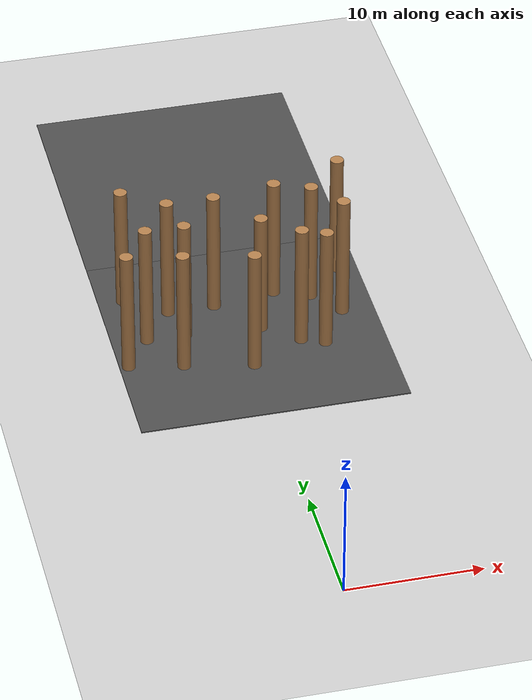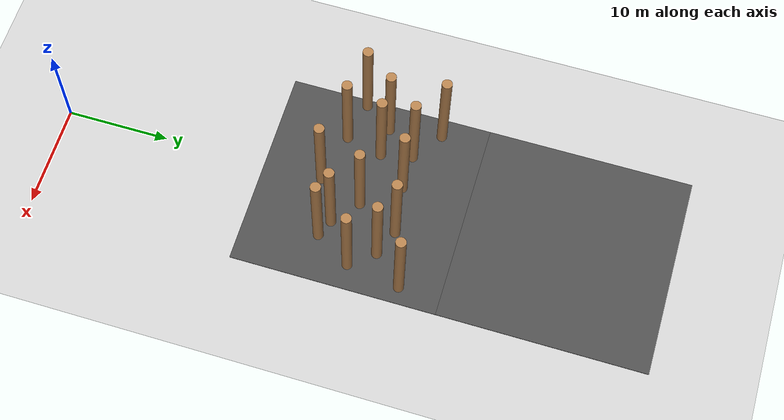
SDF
<sdf version="1.6">
 <world name="default">
  <model name="ground_plane">
   <static>1</static>
   <link name="link">
    <collision name="collision">
     <geometry><plane><normal>0 0 1</normal><size>100 100</size></plane></geometry>
     <surface><friction><ode><mu>100</mu><mu2>50</mu2></ode></friction></surface>
    </collision>
    <visual name="visual">
     <cast_shadows>0</cast_shadows>
     <geometry><plane><normal>0 0 1</normal><size>100 100</size></plane></geometry>
     <material>
      <script><uri>file://media/materials/scripts/gazebo.material</uri><name>Gazebo/Grey</name></script>
     </material>
    </visual>
   </link>
  </model>
  <model name="asphalt_plane_2">
   <static>1</static>
   <link name="link">
    <collision name="collision"><geometry><box><size>20 20 0.1</size></box></geometry></collision>
    <visual name="visual">
     <cast_shadows>0</cast_shadows>
     <geometry><box><size>20 20 0.1</size></box></geometry>
     <material>
      <script>
       <uri>model://asphalt_plane/materials/scripts</uri>
       <uri>model://asphalt_plane/materials/textures</uri>
       <name>vrc/asphalt</name>
      </script>
     </material>
    </visual>
   </link>
   <pose>0.117642 29.9977 0 0 -0 0</pose>
  </model>
  <model name="train">
   <link name="link_0_clone_0_clone_11_clone_15">
    <pose>-5.95615 16.256 0.043478 0 -0 3e-06</pose>
    <inertial>
     <mass>1000</mass>
     <inertia><ixx>0.145833</ixx><ixy>0</ixy><ixz>0</ixz><iyy>0.145833</iyy><iyz>0</iyz><izz>0.125</izz></inertia>
    </inertial>
    <visual name="visual">
     <pose>0 0 4.5 0 -0 0</pose>
     <geometry><cylinder><radius>0.5</radius><length>10</length></cylinder></geometry>
     <material>
      <lighting>1</lighting>
      <script><uri>file://media/materials/scripts/gazebo.material</uri><name>Gazebo/WoodFloor</name></script>
      <ambient>0.3 0.3 0.3 1</ambient>
      <diffuse>0.7 0.7 0.7 1</diffuse>
      <specular>0.01 0.01 0.01 1</specular>
      <emissive>0 0 0 1</emissive>
      <shader type="vertex"><normal_map>__default__</normal_map></shader>
     </material>
    </visual>
    <collision name="collision">
     <pose>0 0 4.5 0 -0 0</pose>
     <geometry><cylinder><radius>0.5</radius><length>10</length></cylinder></geometry>
     <surface>
      <friction>
       <ode><mu>1</mu><mu2>1</mu2><fdir1>0 0 0</fdir1><slip1>0</slip1><slip2>0</slip2></ode>
       <torsional>
        <coefficient>1</coefficient>
        <patch_radius>0</patch_radius>
        <surface_radius>0</surface_radius>
        <use_patch_radius>1</use_patch_radius>
        <ode><slip>0</slip></ode>
       </torsional>
      </friction>
      <bounce><restitution_coefficient>0</restitution_coefficient><threshold>1e+06</threshold></bounce>
      <contact>
       <collide_without_contact>0</collide_without_contact>
       <collide_without_contact_bitmask>1</collide_without_contact_bitmask>
       <collide_bitmask>1</collide_bitmask>
       <ode>
        <soft_cfm>0</soft_cfm>
        <soft_erp>0.2</soft_erp>
        <kp>1e+13</kp>
        <kd>1</kd>
        <max_vel>0.01</max_vel>
        <min_depth>0</min_depth>
       </ode>
       <bullet>
        <split_impulse>1</split_impulse>
        <split_impulse_penetration_threshold>-0.01</split_impulse_penetration_threshold>
        <soft_cfm>0</soft_cfm>
        <soft_erp>0.2</soft_erp>
        <kp>1e+13</kp>
        <kd>1</kd>
       </bullet>
      </contact>
     </surface>
    </collision>
   </link>
   <link name="link_0_clone_0_clone_11_clone_16">
    <pose>-3.07966 16.2248 0.043478 0 -0 3e-06</pose>
    <inertial>
     <mass>1000</mass>
     <inertia><ixx>0.145833</ixx><ixy>0</ixy><ixz>0</ixz><iyy>0.145833</iyy><iyz>0</iyz><izz>0.125</izz></inertia>
    </inertial>
    <visual name="visual">
     <pose>0 0 4.5 0 -0 0</pose>
     <geometry><cylinder><radius>0.5</radius><length>10</length></cylinder></geometry>
     <material>
      <lighting>1</lighting>
      <script><uri>file://media/materials/scripts/gazebo.material</uri><name>Gazebo/WoodFloor</name></script>
      <ambient>0.3 0.3 0.3 1</ambient>
      <diffuse>0.7 0.7 0.7 1</diffuse>
      <specular>0.01 0.01 0.01 1</specular>
      <emissive>0 0 0 1</emissive>
      <shader type="vertex"><normal_map>__default__</normal_map></shader>
     </material>
    </visual>
    <collision name="collision">
     <pose>0 0 4.5 0 -0 0</pose>
     <geometry><cylinder><radius>0.5</radius><length>10</length></cylinder></geometry>
     <surface>
      <friction>
       <ode><mu>1</mu><mu2>1</mu2><fdir1>0 0 0</fdir1><slip1>0</slip1><slip2>0</slip2></ode>
       <torsional>
        <coefficient>1</coefficient>
        <patch_radius>0</patch_radius>
        <surface_radius>0</surface_radius>
        <use_patch_radius>1</use_patch_radius>
        <ode><slip>0</slip></ode>
       </torsional>
      </friction>
      <bounce><restitution_coefficient>0</restitution_coefficient><threshold>1e+06</threshold></bounce>
      <contact>
       <collide_without_contact>0</collide_without_contact>
       <collide_without_contact_bitmask>1</collide_without_contact_bitmask>
       <collide_bitmask>1</collide_bitmask>
       <ode>
        <soft_cfm>0</soft_cfm>
        <soft_erp>0.2</soft_erp>
        <kp>1e+13</kp>
        <kd>1</kd>
        <max_vel>0.01</max_vel>
        <min_depth>0</min_depth>
       </ode>
       <bullet>
        <split_impulse>1</split_impulse>
        <split_impulse_penetration_threshold>-0.01</split_impulse_penetration_threshold>
        <soft_cfm>0</soft_cfm>
        <soft_erp>0.2</soft_erp>
        <kp>1e+13</kp>
        <kd>1</kd>
       </bullet>
      </contact>
     </surface>
    </collision>
   </link>
   <link name="link_0_clone_0_clone_11_clone_17">
    <pose>2.57128 15.8235 0.043478 0 -0 3e-06</pose>
    <inertial>
     <mass>1000</mass>
     <inertia><ixx>0.145833</ixx><ixy>0</ixy><ixz>0</ixz><iyy>0.145833</iyy><iyz>0</iyz><izz>0.125</izz></inertia>
    </inertial>
    <visual name="visual">
     <pose>0 0 4.5 0 -0 0</pose>
     <geometry><cylinder><radius>0.5</radius><length>10</length></cylinder></geometry>
     <material>
      <lighting>1</lighting>
      <script><uri>file://media/materials/scripts/gazebo.material</uri><name>Gazebo/WoodFloor</name></script>
      <ambient>0.3 0.3 0.3 1</ambient>
      <diffuse>0.7 0.7 0.7 1</diffuse>
      <specular>0.01 0.01 0.01 1</specular>
      <emissive>0 0 0 1</emissive>
      <shader type="vertex"><normal_map>__default__</normal_map></shader>
     </material>
    </visual>
    <collision name="collision">
     <pose>0 0 4.5 0 -0 0</pose>
     <geometry><cylinder><radius>0.5</radius><length>10</length></cylinder></geometry>
     <surface>
      <friction>
       <ode><mu>1</mu><mu2>1</mu2><fdir1>0 0 0</fdir1><slip1>0</slip1><slip2>0</slip2></ode>
       <torsional>
        <coefficient>1</coefficient>
        <patch_radius>0</patch_radius>
        <surface_radius>0</surface_radius>
        <use_patch_radius>1</use_patch_radius>
        <ode><slip>0</slip></ode>
       </torsional>
      </friction>
      <bounce><restitution_coefficient>0</restitution_coefficient><threshold>1e+06</threshold></bounce>
      <contact>
       <collide_without_contact>0</collide_without_contact>
       <collide_without_contact_bitmask>1</collide_without_contact_bitmask>
       <collide_bitmask>1</collide_bitmask>
       <ode>
        <soft_cfm>0</soft_cfm>
        <soft_erp>0.2</soft_erp>
        <kp>1e+13</kp>
        <kd>1</kd>
        <max_vel>0.01</max_vel>
        <min_depth>0</min_depth>
       </ode>
       <bullet>
        <split_impulse>1</split_impulse>
        <split_impulse_penetration_threshold>-0.01</split_impulse_penetration_threshold>
        <soft_cfm>0</soft_cfm>
        <soft_erp>0.2</soft_erp>
        <kp>1e+13</kp>
        <kd>1</kd>
       </bullet>
      </contact>
     </surface>
    </collision>
   </link>
   <link name="link_0_clone_0_clone_11_clone_18">
    <pose>-0.221865 19.2173 0.043478 0 -0 3e-06</pose>
    <inertial>
     <mass>1000</mass>
     <inertia><ixx>0.145833</ixx><ixy>0</ixy><ixz>0</ixz><iyy>0.145833</iyy><iyz>0</iyz><izz>0.125</izz></inertia>
    </inertial>
    <visual name="visual">
     <pose>0 0 4.5 0 -0 0</pose>
     <geometry><cylinder><radius>0.5</radius><length>10</length></cylinder></geometry>
     <material>
      <lighting>1</lighting>
      <script><uri>file://media/materials/scripts/gazebo.material</uri><name>Gazebo/WoodFloor</name></script>
      <ambient>0.3 0.3 0.3 1</ambient>
      <diffuse>0.7 0.7 0.7 1</diffuse>
      <specular>0.01 0.01 0.01 1</specular>
      <emissive>0 0 0 1</emissive>
      <shader type="vertex"><normal_map>__default__</normal_map></shader>
     </material>
    </visual>
    <collision name="collision">
     <pose>0 0 4.5 0 -0 0</pose>
     <geometry><cylinder><radius>0.5</radius><length>10</length></cylinder></geometry>
     <surface>
      <friction>
       <ode><mu>1</mu><mu2>1</mu2><fdir1>0 0 0</fdir1><slip1>0</slip1><slip2>0</slip2></ode>
       <torsional>
        <coefficient>1</coefficient>
        <patch_radius>0</patch_radius>
        <surface_radius>0</surface_radius>
        <use_patch_radius>1</use_patch_radius>
        <ode><slip>0</slip></ode>
       </torsional>
      </friction>
      <bounce><restitution_coefficient>0</restitution_coefficient><threshold>1e+06</threshold></bounce>
      <contact>
       <collide_without_contact>0</collide_without_contact>
       <collide_without_contact_bitmask>1</collide_without_contact_bitmask>
       <collide_bitmask>1</collide_bitmask>
       <ode>
        <soft_cfm>0</soft_cfm>
        <soft_erp>0.2</soft_erp>
        <kp>1e+13</kp>
        <kd>1</kd>
        <max_vel>0.01</max_vel>
        <min_depth>0</min_depth>
       </ode>
       <bullet>
        <split_impulse>1</split_impulse>
        <split_impulse_penetration_threshold>-0.01</split_impulse_penetration_threshold>
        <soft_cfm>0</soft_cfm>
        <soft_erp>0.2</soft_erp>
        <kp>1e+13</kp>
        <kd>1</kd>
       </bullet>
      </contact>
     </surface>
    </collision>
   </link>
   <link name="link_0_clone_0_clone_11_clone_19">
    <pose>7.08596 18.8441 0.043478 0 -0 3e-06</pose>
    <inertial>
     <mass>1000</mass>
     <inertia><ixx>0.145833</ixx><ixy>0</ixy><ixz>0</ixz><iyy>0.145833</iyy><iyz>0</iyz><izz>0.125</izz></inertia>
    </inertial>
    <visual name="visual">
     <pose>0 0 4.5 0 -0 0</pose>
     <geometry><cylinder><radius>0.5</radius><length>10</length></cylinder></geometry>
     <material>
      <lighting>1</lighting>
      <script><uri>file://media/materials/scripts/gazebo.material</uri><name>Gazebo/WoodFloor</name></script>
      <ambient>0.3 0.3 0.3 1</ambient>
      <diffuse>0.7 0.7 0.7 1</diffuse>
      <specular>0.01 0.01 0.01 1</specular>
      <emissive>0 0 0 1</emissive>
      <shader type="vertex"><normal_map>__default__</normal_map></shader>
     </material>
    </visual>
    <collision name="collision">
     <pose>0 0 4.5 0 -0 0</pose>
     <geometry><cylinder><radius>0.5</radius><length>10</length></cylinder></geometry>
     <surface>
      <friction>
       <ode><mu>1</mu><mu2>1</mu2><fdir1>0 0 0</fdir1><slip1>0</slip1><slip2>0</slip2></ode>
       <torsional>
        <coefficient>1</coefficient>
        <patch_radius>0</patch_radius>
        <surface_radius>0</surface_radius>
        <use_patch_radius>1</use_patch_radius>
        <ode><slip>0</slip></ode>
       </torsional>
      </friction>
      <bounce><restitution_coefficient>0</restitution_coefficient><threshold>1e+06</threshold></bounce>
      <contact>
       <collide_without_contact>0</collide_without_contact>
       <collide_without_contact_bitmask>1</collide_without_contact_bitmask>
       <collide_bitmask>1</collide_bitmask>
       <ode>
        <soft_cfm>0</soft_cfm>
        <soft_erp>0.2</soft_erp>
        <kp>1e+13</kp>
        <kd>1</kd>
        <max_vel>0.01</max_vel>
        <min_depth>0</min_depth>
       </ode>
       <bullet>
        <split_impulse>1</split_impulse>
        <split_impulse_penetration_threshold>-0.01</split_impulse_penetration_threshold>
        <soft_cfm>0</soft_cfm>
        <soft_erp>0.2</soft_erp>
        <kp>1e+13</kp>
        <kd>1</kd>
       </bullet>
      </contact>
     </surface>
    </collision>
   </link>
   <link name="link_0_clone_0_clone_11_clone_20">
    <pose>9.77782 21.7532 0.043478 0 -0 3e-06</pose>
    <inertial>
     <mass>1000</mass>
     <inertia><ixx>0.145833</ixx><ixy>0</ixy><ixz>0</ixz><iyy>0.145833</iyy><iyz>0</iyz><izz>0.125</izz></inertia>
    </inertial>
    <visual name="visual">
     <pose>0 0 4.5 0 -0 0</pose>
     <geometry><cylinder><radius>0.5</radius><length>10</length></cylinder></geometry>
     <material>
      <lighting>1</lighting>
      <script><uri>file://media/materials/scripts/gazebo.material</uri><name>Gazebo/WoodFloor</name></script>
      <ambient>0.3 0.3 0.3 1</ambient>
      <diffuse>0.7 0.7 0.7 1</diffuse>
      <specular>0.01 0.01 0.01 1</specular>
      <emissive>0 0 0 1</emissive>
      <shader type="vertex"><normal_map>__default__</normal_map></shader>
     </material>
    </visual>
    <collision name="collision">
     <pose>0 0 4.5 0 -0 0</pose>
     <geometry><cylinder><radius>0.5</radius><length>10</length></cylinder></geometry>
     <surface>
      <friction>
       <ode><mu>1</mu><mu2>1</mu2><fdir1>0 0 0</fdir1><slip1>0</slip1><slip2>0</slip2></ode>
       <torsional>
        <coefficient>1</coefficient>
        <patch_radius>0</patch_radius>
        <surface_radius>0</surface_radius>
        <use_patch_radius>1</use_patch_radius>
        <ode><slip>0</slip></ode>
       </torsional>
      </friction>
      <bounce><restitution_coefficient>0</restitution_coefficient><threshold>1e+06</threshold></bounce>
      <contact>
       <collide_without_contact>0</collide_without_contact>
       <collide_without_contact_bitmask>1</collide_without_contact_bitmask>
       <collide_bitmask>1</collide_bitmask>
       <ode>
        <soft_cfm>0</soft_cfm>
        <soft_erp>0.2</soft_erp>
        <kp>1e+13</kp>
        <kd>1</kd>
        <max_vel>0.01</max_vel>
        <min_depth>0</min_depth>
       </ode>
       <bullet>
        <split_impulse>1</split_impulse>
        <split_impulse_penetration_threshold>-0.01</split_impulse_penetration_threshold>
        <soft_cfm>0</soft_cfm>
        <soft_erp>0.2</soft_erp>
        <kp>1e+13</kp>
        <kd>1</kd>
       </bullet>
      </contact>
     </surface>
    </collision>
   </link>
   <link name="link_0_clone_0_clone_11_clone_21">
    <pose>4.49421 19.8797 0.043478 0 -0 3e-06</pose>
    <inertial>
     <mass>1000</mass>
     <inertia><ixx>0.145833</ixx><ixy>0</ixy><ixz>0</ixz><iyy>0.145833</iyy><iyz>0</iyz><izz>0.125</izz></inertia>
    </inertial>
    <visual name="visual">
     <pose>0 0 4.5 0 -0 0</pose>
     <geometry><cylinder><radius>0.5</radius><length>10</length></cylinder></geometry>
     <material>
      <lighting>1</lighting>
      <script><uri>file://media/materials/scripts/gazebo.material</uri><name>Gazebo/WoodFloor</name></script>
      <ambient>0.3 0.3 0.3 1</ambient>
      <diffuse>0.7 0.7 0.7 1</diffuse>
      <specular>0.01 0.01 0.01 1</specular>
      <emissive>0 0 0 1</emissive>
      <shader type="vertex"><normal_map>__default__</normal_map></shader>
     </material>
    </visual>
    <collision name="collision">
     <pose>0 0 4.5 0 -0 0</pose>
     <geometry><cylinder><radius>0.5</radius><length>10</length></cylinder></geometry>
     <surface>
      <friction>
       <ode><mu>1</mu><mu2>1</mu2><fdir1>0 0 0</fdir1><slip1>0</slip1><slip2>0</slip2></ode>
       <torsional>
        <coefficient>1</coefficient>
        <patch_radius>0</patch_radius>
        <surface_radius>0</surface_radius>
        <use_patch_radius>1</use_patch_radius>
        <ode><slip>0</slip></ode>
       </torsional>
      </friction>
      <bounce><restitution_coefficient>0</restitution_coefficient><threshold>1e+06</threshold></bounce>
      <contact>
       <collide_without_contact>0</collide_without_contact>
       <collide_without_contact_bitmask>1</collide_without_contact_bitmask>
       <collide_bitmask>1</collide_bitmask>
       <ode>
        <soft_cfm>0</soft_cfm>
        <soft_erp>0.2</soft_erp>
        <kp>1e+13</kp>
        <kd>1</kd>
        <max_vel>0.01</max_vel>
        <min_depth>0</min_depth>
       </ode>
       <bullet>
        <split_impulse>1</split_impulse>
        <split_impulse_penetration_threshold>-0.01</split_impulse_penetration_threshold>
        <soft_cfm>0</soft_cfm>
        <soft_erp>0.2</soft_erp>
        <kp>1e+13</kp>
        <kd>1</kd>
       </bullet>
      </contact>
     </surface>
    </collision>
   </link>
   <link name="link_0_clone_0_clone_11_clone_22">
    <pose>-3.72004 19.2472 0.043478 0 -0 3e-06</pose>
    <inertial>
     <mass>1000</mass>
     <inertia><ixx>0.145833</ixx><ixy>0</ixy><ixz>0</ixz><iyy>0.145833</iyy><iyz>0</iyz><izz>0.125</izz></inertia>
    </inertial>
    <visual name="visual">
     <pose>0 0 4.5 0 -0 0</pose>
     <geometry><cylinder><radius>0.5</radius><length>10</length></cylinder></geometry>
     <material>
      <lighting>1</lighting>
      <script><uri>file://media/materials/scripts/gazebo.material</uri><name>Gazebo/WoodFloor</name></script>
      <ambient>0.3 0.3 0.3 1</ambient>
      <diffuse>0.7 0.7 0.7 1</diffuse>
      <specular>0.01 0.01 0.01 1</specular>
      <emissive>0 0 0 1</emissive>
      <shader type="vertex"><normal_map>__default__</normal_map></shader>
     </material>
    </visual>
    <collision name="collision">
     <pose>0 0 4.5 0 -0 0</pose>
     <geometry><cylinder><radius>0.5</radius><length>10</length></cylinder></geometry>
     <surface>
      <friction>
       <ode><mu>1</mu><mu2>1</mu2><fdir1>0 0 0</fdir1><slip1>0</slip1><slip2>0</slip2></ode>
       <torsional>
        <coefficient>1</coefficient>
        <patch_radius>0</patch_radius>
        <surface_radius>0</surface_radius>
        <use_patch_radius>1</use_patch_radius>
        <ode><slip>0</slip></ode>
       </torsional>
      </friction>
      <bounce><restitution_coefficient>0</restitution_coefficient><threshold>1e+06</threshold></bounce>
      <contact>
       <collide_without_contact>0</collide_without_contact>
       <collide_without_contact_bitmask>1</collide_without_contact_bitmask>
       <collide_bitmask>1</collide_bitmask>
       <ode>
        <soft_cfm>0</soft_cfm>
        <soft_erp>0.2</soft_erp>
        <kp>1e+13</kp>
        <kd>1</kd>
        <max_vel>0.01</max_vel>
        <min_depth>0</min_depth>
       </ode>
       <bullet>
        <split_impulse>1</split_impulse>
        <split_impulse_penetration_threshold>-0.01</split_impulse_penetration_threshold>
        <soft_cfm>0</soft_cfm>
        <soft_erp>0.2</soft_erp>
        <kp>1e+13</kp>
        <kd>1</kd>
       </bullet>
      </contact>
     </surface>
    </collision>
   </link>
   <link name="link_0_clone_0_clone_11_clone_23">
    <pose>-6.72612 21.3485 0.043478 0 -0 3e-06</pose>
    <inertial>
     <mass>1000</mass>
     <inertia><ixx>0.145833</ixx><ixy>0</ixy><ixz>0</ixz><iyy>0.145833</iyy><iyz>0</iyz><izz>0.125</izz></inertia>
    </inertial>
    <visual name="visual">
     <pose>0 0 4.5 0 -0 0</pose>
     <geometry><cylinder><radius>0.5</radius><length>10</length></cylinder></geometry>
     <material>
      <lighting>1</lighting>
      <script><uri>file://media/materials/scripts/gazebo.material</uri><name>Gazebo/WoodFloor</name></script>
      <ambient>0.3 0.3 0.3 1</ambient>
      <diffuse>0.7 0.7 0.7 1</diffuse>
      <specular>0.01 0.01 0.01 1</specular>
      <emissive>0 0 0 1</emissive>
      <shader type="vertex"><normal_map>__default__</normal_map></shader>
     </material>
    </visual>
    <collision name="collision">
     <pose>0 0 4.5 0 -0 0</pose>
     <geometry><cylinder><radius>0.5</radius><length>10</length></cylinder></geometry>
     <surface>
      <friction>
       <ode><mu>1</mu><mu2>1</mu2><fdir1>0 0 0</fdir1><slip1>0</slip1><slip2>0</slip2></ode>
       <torsional>
        <coefficient>1</coefficient>
        <patch_radius>0</patch_radius>
        <surface_radius>0</surface_radius>
        <use_patch_radius>1</use_patch_radius>
        <ode><slip>0</slip></ode>
       </torsional>
      </friction>
      <bounce><restitution_coefficient>0</restitution_coefficient><threshold>1e+06</threshold></bounce>
      <contact>
       <collide_without_contact>0</collide_without_contact>
       <collide_without_contact_bitmask>1</collide_without_contact_bitmask>
       <collide_bitmask>1</collide_bitmask>
       <ode>
        <soft_cfm>0</soft_cfm>
        <soft_erp>0.2</soft_erp>
        <kp>1e+13</kp>
        <kd>1</kd>
        <max_vel>0.01</max_vel>
        <min_depth>0</min_depth>
       </ode>
       <bullet>
        <split_impulse>1</split_impulse>
        <split_impulse_penetration_threshold>-0.01</split_impulse_penetration_threshold>
        <soft_cfm>0</soft_cfm>
        <soft_erp>0.2</soft_erp>
        <kp>1e+13</kp>
        <kd>1</kd>
       </bullet>
      </contact>
     </surface>
    </collision>
   </link>
   <link name="link_0_clone_0_clone_11_clone_24">
    <pose>8.95957 16.5169 0.043478 0 -0 3e-06</pose>
    <inertial>
     <mass>1000</mass>
     <inertia><ixx>0.145833</ixx><ixy>0</ixy><ixz>0</ixz><iyy>0.145833</iyy><iyz>0</iyz><izz>0.125</izz></inertia>
    </inertial>
    <visual name="visual">
     <pose>0 0 4.5 0 -0 0</pose>
     <geometry><cylinder><radius>0.5</radius><length>10</length></cylinder></geometry>
     <material>
      <lighting>1</lighting>
      <script><uri>file://media/materials/scripts/gazebo.material</uri><name>Gazebo/WoodFloor</name></script>
      <ambient>0.3 0.3 0.3 1</ambient>
      <diffuse>0.7 0.7 0.7 1</diffuse>
      <specular>0.01 0.01 0.01 1</specular>
      <emissive>0 0 0 1</emissive>
      <shader type="vertex"><normal_map>__default__</normal_map></shader>
     </material>
    </visual>
    <collision name="collision">
     <pose>0 0 4.5 0 -0 0</pose>
     <geometry><cylinder><radius>0.5</radius><length>10</length></cylinder></geometry>
     <surface>
      <friction>
       <ode><mu>1</mu><mu2>1</mu2><fdir1>0 0 0</fdir1><slip1>0</slip1><slip2>0</slip2></ode>
       <torsional>
        <coefficient>1</coefficient>
        <patch_radius>0</patch_radius>
        <surface_radius>0</surface_radius>
        <use_patch_radius>1</use_patch_radius>
        <ode><slip>0</slip></ode>
       </torsional>
      </friction>
      <bounce><restitution_coefficient>0</restitution_coefficient><threshold>1e+06</threshold></bounce>
      <contact>
       <collide_without_contact>0</collide_without_contact>
       <collide_without_contact_bitmask>1</collide_without_contact_bitmask>
       <collide_bitmask>1</collide_bitmask>
       <ode>
        <soft_cfm>0</soft_cfm>
        <soft_erp>0.2</soft_erp>
        <kp>1e+13</kp>
        <kd>1</kd>
        <max_vel>0.01</max_vel>
        <min_depth>0</min_depth>
       </ode>
       <bullet>
        <split_impulse>1</split_impulse>
        <split_impulse_penetration_threshold>-0.01</split_impulse_penetration_threshold>
        <soft_cfm>0</soft_cfm>
        <soft_erp>0.2</soft_erp>
        <kp>1e+13</kp>
        <kd>1</kd>
       </bullet>
      </contact>
     </surface>
    </collision>
   </link>
   <link name="link_0_clone_0_clone_11_clone_4">
    <pose>6.81591 13.0178 0.043478 0 -0 3e-06</pose>
    <inertial>
     <mass>1000</mass>
     <inertia><ixx>0.145833</ixx><ixy>0</ixy><ixz>0</ixz><iyy>0.145833</iyy><iyz>0</iyz><izz>0.125</izz></inertia>
    </inertial>
    <visual name="visual">
     <pose>0 0 4.5 0 -0 0</pose>
     <geometry><cylinder><radius>0.5</radius><length>10</length></cylinder></geometry>
     <material>
      <lighting>1</lighting>
      <script><uri>file://media/materials/scripts/gazebo.material</uri><name>Gazebo/WoodFloor</name></script>
      <ambient>0.3 0.3 0.3 1</ambient>
      <diffuse>0.7 0.7 0.7 1</diffuse>
      <specular>0.01 0.01 0.01 1</specular>
      <emissive>0 0 0 1</emissive>
      <shader type="vertex"><normal_map>__default__</normal_map></shader>
     </material>
    </visual>
    <collision name="collision">
     <pose>0 0 4.5 0 -0 0</pose>
     <geometry><cylinder><radius>0.5</radius><length>10</length></cylinder></geometry>
     <surface>
      <friction>
       <ode><mu>1</mu><mu2>1</mu2><fdir1>0 0 0</fdir1><slip1>0</slip1><slip2>0</slip2></ode>
       <torsional>
        <coefficient>1</coefficient>
        <patch_radius>0</patch_radius>
        <surface_radius>0</surface_radius>
        <use_patch_radius>1</use_patch_radius>
        <ode><slip>0</slip></ode>
       </torsional>
      </friction>
      <bounce><restitution_coefficient>0</restitution_coefficient><threshold>1e+06</threshold></bounce>
      <contact>
       <collide_without_contact>0</collide_without_contact>
       <collide_without_contact_bitmask>1</collide_without_contact_bitmask>
       <collide_bitmask>1</collide_bitmask>
       <ode>
        <soft_cfm>0</soft_cfm>
        <soft_erp>0.2</soft_erp>
        <kp>1e+13</kp>
        <kd>1</kd>
        <max_vel>0.01</max_vel>
        <min_depth>0</min_depth>
       </ode>
       <bullet>
        <split_impulse>1</split_impulse>
        <split_impulse_penetration_threshold>-0.01</split_impulse_penetration_threshold>
        <soft_cfm>0</soft_cfm>
        <soft_erp>0.2</soft_erp>
        <kp>1e+13</kp>
        <kd>1</kd>
       </bullet>
      </contact>
     </surface>
    </collision>
   </link>
   <link name="link_0_clone_0_clone_11_clone_6">
    <pose>-7.93088 13.4362 0.043478 0 -0 3e-06</pose>
    <inertial>
     <mass>1000</mass>
     <inertia><ixx>0.145833</ixx><ixy>0</ixy><ixz>0</ixz><iyy>0.145833</iyy><iyz>0</iyz><izz>0.125</izz></inertia>
    </inertial>
    <visual name="visual">
     <pose>0 0 4.5 0 -0 0</pose>
     <geometry><cylinder><radius>0.5</radius><length>10</length></cylinder></geometry>
     <material>
      <lighting>1</lighting>
      <script><uri>file://media/materials/scripts/gazebo.material</uri><name>Gazebo/WoodFloor</name></script>
      <ambient>0.3 0.3 0.3 1</ambient>
      <diffuse>0.7 0.7 0.7 1</diffuse>
      <specular>0.01 0.01 0.01 1</specular>
      <emissive>0 0 0 1</emissive>
      <shader type="vertex"><normal_map>__default__</normal_map></shader>
     </material>
    </visual>
    <collision name="collision">
     <pose>0 0 4.5 0 -0 0</pose>
     <geometry><cylinder><radius>0.5</radius><length>10</length></cylinder></geometry>
     <surface>
      <friction>
       <ode><mu>1</mu><mu2>1</mu2><fdir1>0 0 0</fdir1><slip1>0</slip1><slip2>0</slip2></ode>
       <torsional>
        <coefficient>1</coefficient>
        <patch_radius>0</patch_radius>
        <surface_radius>0</surface_radius>
        <use_patch_radius>1</use_patch_radius>
        <ode><slip>0</slip></ode>
       </torsional>
      </friction>
      <bounce><restitution_coefficient>0</restitution_coefficient><threshold>1e+06</threshold></bounce>
      <contact>
       <collide_without_contact>0</collide_without_contact>
       <collide_without_contact_bitmask>1</collide_without_contact_bitmask>
       <collide_bitmask>1</collide_bitmask>
       <ode>
        <soft_cfm>0</soft_cfm>
        <soft_erp>0.2</soft_erp>
        <kp>1e+13</kp>
        <kd>1</kd>
        <max_vel>0.01</max_vel>
        <min_depth>0</min_depth>
       </ode>
       <bullet>
        <split_impulse>1</split_impulse>
        <split_impulse_penetration_threshold>-0.01</split_impulse_penetration_threshold>
        <soft_cfm>0</soft_cfm>
        <soft_erp>0.2</soft_erp>
        <kp>1e+13</kp>
        <kd>1</kd>
       </bullet>
      </contact>
     </surface>
    </collision>
   </link>
   <link name="link_0_clone_0_clone_16">
    <pose>-3.95167 12.6277 0.043478 0 -0 0</pose>
    <inertial>
     <mass>1000</mass>
     <inertia><ixx>0.145833</ixx><ixy>0</ixy><ixz>0</ixz><iyy>0.145833</iyy><iyz>0</iyz><izz>0.125</izz></inertia>
    </inertial>
    <visual name="visual">
     <pose>0 0 4.5 0 -0 0</pose>
     <geometry><cylinder><radius>0.5</radius><length>10</length></cylinder></geometry>
     <material>
      <lighting>1</lighting>
      <script><uri>file://media/materials/scripts/gazebo.material</uri><name>Gazebo/WoodFloor</name></script>
      <ambient>0.3 0.3 0.3 1</ambient>
      <diffuse>0.7 0.7 0.7 1</diffuse>
      <specular>0.01 0.01 0.01 1</specular>
      <emissive>0 0 0 1</emissive>
      <shader type="vertex"><normal_map>__default__</normal_map></shader>
     </material>
    </visual>
    <collision name="collision">
     <pose>0 0 4.5 0 -0 0</pose>
     <geometry><cylinder><radius>0.5</radius><length>10</length></cylinder></geometry>
     <surface>
      <friction>
       <ode><mu>1</mu><mu2>1</mu2><fdir1>0 0 0</fdir1><slip1>0</slip1><slip2>0</slip2></ode>
       <torsional>
        <coefficient>1</coefficient>
        <patch_radius>0</patch_radius>
        <surface_radius>0</surface_radius>
        <use_patch_radius>1</use_patch_radius>
        <ode><slip>0</slip></ode>
       </torsional>
      </friction>
      <bounce><restitution_coefficient>0</restitution_coefficient><threshold>1e+06</threshold></bounce>
      <contact>
       <collide_without_contact>0</collide_without_contact>
       <collide_without_contact_bitmask>1</collide_without_contact_bitmask>
       <collide_bitmask>1</collide_bitmask>
       <ode>
        <soft_cfm>0</soft_cfm>
        <soft_erp>0.2</soft_erp>
        <kp>1e+13</kp>
        <kd>1</kd>
        <max_vel>0.01</max_vel>
        <min_depth>0</min_depth>
       </ode>
       <bullet>
        <split_impulse>1</split_impulse>
        <split_impulse_penetration_threshold>-0.01</split_impulse_penetration_threshold>
        <soft_cfm>0</soft_cfm>
        <soft_erp>0.2</soft_erp>
        <kp>1e+13</kp>
        <kd>1</kd>
       </bullet>
      </contact>
     </surface>
    </collision>
   </link>
   <link name="link_0_clone_0_clone_17">
    <pose>5.13836 13.7397 0.043478 0 -0 0</pose>
    <inertial>
     <mass>1000</mass>
     <inertia><ixx>0.145833</ixx><ixy>0</ixy><ixz>0</ixz><iyy>0.145833</iyy><iyz>0</iyz><izz>0.125</izz></inertia>
    </inertial>
    <visual name="visual">
     <pose>0 0 4.5 0 -0 0</pose>
     <geometry><cylinder><radius>0.5</radius><length>10</length></cylinder></geometry>
     <material>
      <lighting>1</lighting>
      <script><uri>file://media/materials/scripts/gazebo.material</uri><name>Gazebo/WoodFloor</name></script>
      <ambient>0.3 0.3 0.3 1</ambient>
      <diffuse>0.7 0.7 0.7 1</diffuse>
      <specular>0.01 0.01 0.01 1</specular>
      <emissive>0 0 0 1</emissive>
      <shader type="vertex"><normal_map>__default__</normal_map></shader>
     </material>
    </visual>
    <collision name="collision">
     <pose>0 0 4.5 0 -0 0</pose>
     <geometry><cylinder><radius>0.5</radius><length>10</length></cylinder></geometry>
     <surface>
      <friction>
       <ode><mu>1</mu><mu2>1</mu2><fdir1>0 0 0</fdir1><slip1>0</slip1><slip2>0</slip2></ode>
       <torsional>
        <coefficient>1</coefficient>
        <patch_radius>0</patch_radius>
        <surface_radius>0</surface_radius>
        <use_patch_radius>1</use_patch_radius>
        <ode><slip>0</slip></ode>
       </torsional>
      </friction>
      <bounce><restitution_coefficient>0</restitution_coefficient><threshold>1e+06</threshold></bounce>
      <contact>
       <collide_without_contact>0</collide_without_contact>
       <collide_without_contact_bitmask>1</collide_without_contact_bitmask>
       <collide_bitmask>1</collide_bitmask>
       <ode>
        <soft_cfm>0</soft_cfm>
        <soft_erp>0.2</soft_erp>
        <kp>1e+13</kp>
        <kd>1</kd>
        <max_vel>0.01</max_vel>
        <min_depth>0</min_depth>
       </ode>
       <bullet>
        <split_impulse>1</split_impulse>
        <split_impulse_penetration_threshold>-0.01</split_impulse_penetration_threshold>
        <soft_cfm>0</soft_cfm>
        <soft_erp>0.2</soft_erp>
        <kp>1e+13</kp>
        <kd>1</kd>
       </bullet>
      </contact>
     </surface>
    </collision>
   </link>
   <link name="link_0_clone_0_clone_2">
    <pose>1.09991 11.5381 0.043478 0 -0 0</pose>
    <inertial>
     <mass>1000</mass>
     <inertia><ixx>0.145833</ixx><ixy>0</ixy><ixz>0</ixz><iyy>0.145833</iyy><iyz>0</iyz><izz>0.125</izz></inertia>
    </inertial>
    <visual name="visual">
     <pose>0 0 4.5 0 -0 0</pose>
     <geometry><cylinder><radius>0.5</radius><length>10</length></cylinder></geometry>
     <material>
      <lighting>1</lighting>
      <script><uri>file://media/materials/scripts/gazebo.material</uri><name>Gazebo/WoodFloor</name></script>
      <ambient>0.3 0.3 0.3 1</ambient>
      <diffuse>0.7 0.7 0.7 1</diffuse>
      <specular>0.01 0.01 0.01 1</specular>
      <emissive>0 0 0 1</emissive>
      <shader type="vertex"><normal_map>__default__</normal_map></shader>
     </material>
    </visual>
    <collision name="collision">
     <pose>0 0 4.5 0 -0 0</pose>
     <geometry><cylinder><radius>0.5</radius><length>10</length></cylinder></geometry>
     <surface>
      <friction>
       <ode><mu>1</mu><mu2>1</mu2><fdir1>0 0 0</fdir1><slip1>0</slip1><slip2>0</slip2></ode>
       <torsional>
        <coefficient>1</coefficient>
        <patch_radius>0</patch_radius>
        <surface_radius>0</surface_radius>
        <use_patch_radius>1</use_patch_radius>
        <ode><slip>0</slip></ode>
       </torsional>
      </friction>
      <bounce><restitution_coefficient>0</restitution_coefficient><threshold>1e+06</threshold></bounce>
      <contact>
       <collide_without_contact>0</collide_without_contact>
       <collide_without_contact_bitmask>1</collide_without_contact_bitmask>
       <collide_bitmask>1</collide_bitmask>
       <ode>
        <soft_cfm>0</soft_cfm>
        <soft_erp>0.2</soft_erp>
        <kp>1e+13</kp>
        <kd>1</kd>
        <max_vel>0.01</max_vel>
        <min_depth>0</min_depth>
       </ode>
       <bullet>
        <split_impulse>1</split_impulse>
        <split_impulse_penetration_threshold>-0.01</split_impulse_penetration_threshold>
        <soft_cfm>0</soft_cfm>
        <soft_erp>0.2</soft_erp>
        <kp>1e+13</kp>
        <kd>1</kd>
       </bullet>
      </contact>
     </surface>
    </collision>
   </link>
   <static>1</static>
   <pose>-1.27394 14.2468 0.506522 0 0 -3e-06</pose>
  </model>
  <model name="asphalt_plane">
   <link name="link">
    <inertial>
     <mass>1</mass>
     <inertia><ixx>1</ixx><ixy>0</ixy><ixz>0</ixz><iyy>1</iyy><iyz>0</iyz><izz>1</izz></inertia>
    </inertial>
    <visual name="visual">
     <cast_shadows>0</cast_shadows>
     <geometry><box><size>20 20 0.1</size></box></geometry>
     <material>
      <script>
       <uri>model://asphalt_plane/materials/scripts</uri>
       <uri>model://asphalt_plane/materials/textures</uri>
       <name>vrc/asphalt</name>
      </script>
      <ambient>0.5 0.5 0.5 1</ambient>
      <diffuse>0.5 0.5 0.5 1</diffuse>
      <specular>0.2 0.2 0.2 1</specular>
      <emissive>0 0 0 1</emissive>
      <shader type="vertex"><normal_map>__default__</normal_map></shader>
     </material>
    </visual>
    <collision name="collision">
     <geometry><box><size>20 20 0.1</size></box></geometry>
     <surface>
      <friction>
       <ode><mu>1</mu><mu2>1</mu2><fdir1>0 0 0</fdir1><slip1>0</slip1><slip2>0</slip2></ode>
       <torsional>
        <coefficient>1</coefficient>
        <patch_radius>0</patch_radius>
        <surface_radius>0</surface_radius>
        <use_patch_radius>1</use_patch_radius>
        <ode><slip>0</slip></ode>
       </torsional>
      </friction>
      <bounce><restitution_coefficient>0</restitution_coefficient><threshold>1e+06</threshold></bounce>
      <contact>
       <collide_without_contact>0</collide_without_contact>
       <collide_without_contact_bitmask>1</collide_without_contact_bitmask>
       <collide_bitmask>1</collide_bitmask>
       <ode>
        <soft_cfm>0</soft_cfm>
        <soft_erp>0.2</soft_erp>
        <kp>1e+13</kp>
        <kd>1</kd>
        <max_vel>0.01</max_vel>
        <min_depth>0</min_depth>
       </ode>
       <bullet>
        <split_impulse>1</split_impulse>
        <split_impulse_penetration_threshold>-0.01</split_impulse_penetration_threshold>
        <soft_cfm>0</soft_cfm>
        <soft_erp>0.2</soft_erp>
        <kp>1e+13</kp>
        <kd>1</kd>
       </bullet>
      </contact>
     </surface>
    </collision>
   </link>
   <static>1</static>
   <pose>0.110386 49.9949 0 0 -0 0</pose>
  </model>
 </world>
</sdf>
